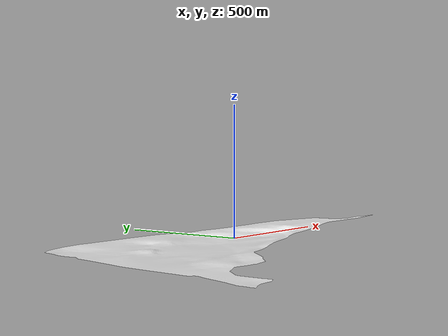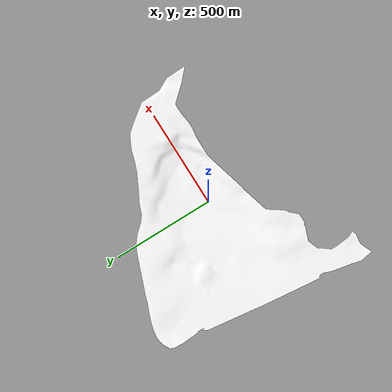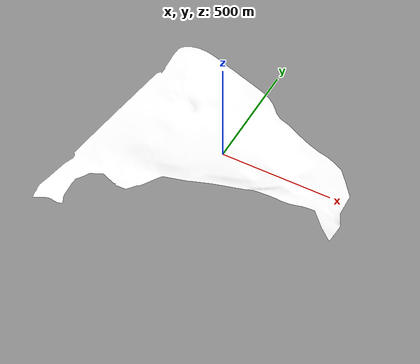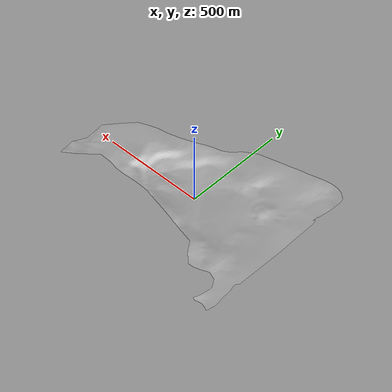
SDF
<?xml version='1.0'?>
<sdf version="1.10">
  <model name='rifle_cell'>
    <pose frame=''>0 0 0 0 0 0</pose>
    <static>1</static>
    <link name='link'>
      <collision name='collision'>
        <geometry>
          <mesh>
            <uri>meshes/rifle-masked.stl</uri>
          </mesh>
        </geometry>
      </collision>
      <visual name='visual'>
        <cast_shadows>1</cast_shadows>
        <geometry>
          <mesh>
            <uri>meshes/rifle-masked.stl</uri>
          </mesh>
        </geometry>
        <material>
          <pbr>
            <metal>
              <albedo_map>materials/textures/sand_pebbles.png</albedo_map>
            </metal>
          </pbr>
          <diffuse>1 1 1 1</diffuse>
        </material>
      </visual>
    </link>
  </model>
</sdf>
